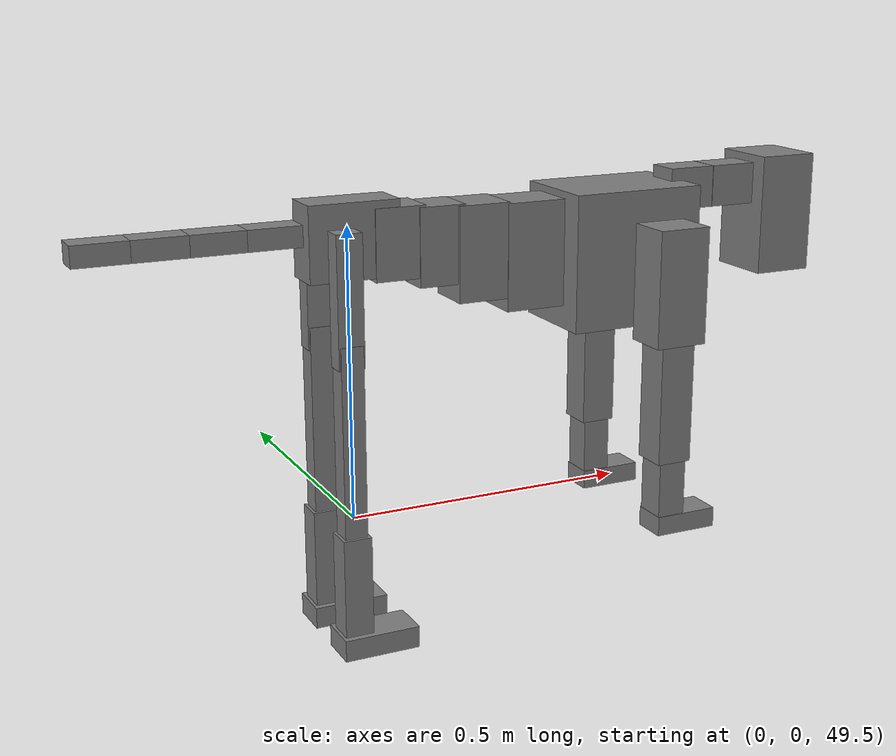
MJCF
<mujoco model="dog">

    <default>
        <joint armature="0.02" stiffness="1" damping="0.2" limited="true"/>
        <geom condim="3" friction="1 0.05 0.05" margin="0.01"/>
        <motor ctrllimited="true" ctrlrange="-1.0 1.0" forcelimited="true" gear="50"/>
    </default>

    <compiler inertiafromgeom="true" angle="radian"/>

    <option timestep="0.016" iterations="50" tolerance="1e-10" solver="Newton" jacobian="dense" cone="pyramidal"/>

    <size nconmax="20000" njmax="60000" nstack="5000000"/>
    <visual>
        <map force="0.1" zfar="30"/>
        <rgba haze="0.15 0.25 0.35 1"/>
        <quality shadowsize="2048"/>
        <global offwidth="800" offheight="800"/>
    </visual>

    <asset>
        <texture type="skybox" builtin="gradient" rgb1="0.3 0.5 0.7" rgb2="0 0 0" width="512" height="512"/>
        <texture name="texplane" type="2d" builtin="checker" rgb1=".2 .3 .4" rgb2=".1 0.15 0.2" width="512" height="512"
                 mark="cross" markrgb=".8 .8 .8"/>
        <texture name="texgeom" type="cube" builtin="flat" mark="cross" width="127" height="1278" rgb1="0.8 0.6 0.4"
                 rgb2="0.8 0.6 0.4" markrgb="1 1 1" random="0.01"/>

        <material name="matplane" reflectance="0.3" texture="texplane" texrepeat="1 1" texuniform="true"/>
        <material name="matgeom" texture="texgeom" texuniform="true" rgba="0.8 0.6 .4 1"/>
    </asset>

    <worldbody>
        <geom name="floor" pos="0 0 0" size="0 0 .25" type="plane" material="matplane" condim="3"/>

        <light directional="false" diffuse=".2 .2 .2" specular="0 0 0" pos="0 0 5" dir="0 0 -1" castshadow="false"/>
        <light mode="targetbodycom" target="torso" directional="false" diffuse=".8 .8 .8" specular="0.3 0.3 0.3"
               pos="0 0 4.0" dir="0 0 -1"/>

        <body name="root" pos="0 0 50">
            <freejoint name="root_1"/>
            <geom type="box" pos="0 0 -0.02" size="0.0774  0.0358  0.063" density="2030"/>

            <body name="spine1" pos="0.054 0 0">
                <joint name="spine1_y" axis="0 1 0" range="0 0.7" limited="true"/>
                <geom type="box" pos="0.02375 0 -0.03" size="0.04375  0.0375  0.05985" density="2030"/>

                <body name="spine2" pos="0.0612 0 0">
                    <joint name="spine2_y" axis="0 1 0" range="-0.15 0.15" limited="true"/>
                    <geom type="box" pos="0.03555  0  -0.04" size="0.04055  0.039  0.06615" density="2030"/>

                    <body name="spine3" pos="0.0730 0 0">
                        <joint name="spine3_y" axis="0 1 0" range="-0.15 0.15" limited="true"/>
                        <geom type="box" pos="0.03555  0  -0.057" size="0.04555  0.0445  0.081" density="2030"/>

                        <body name="spine4" pos="0.0780 0 0">
                            <joint name="spine4_y" axis="0 1 0" range="-0.15 0.15" limited="true"/>
                            <geom type="box" pos="0.05265  0  -0.07" size="0.05265  0.045  0.09135" density="2030"/>

                            <body name="torso" pos="0.1082 0 0">
                                <joint name="torso_y" axis="0 1 0" range="-0.15 0.15" limited="true"/>
                                <geom type="box" pos="0.11925  0  -0.085" size="0.11925  0.085  0.11745"
                                      density="2030"/>

                                <body name="neck1" pos="0.2160  0   0.0180">
                                    <joint name="neck1_y" axis="0 1 0" range="-1.2  -1" limited="true"/>
                                    <geom type="box" pos="0.0423  0  0" size="0.0423  0.03  0.036" density="2325"/>

                                    <body name="neck2" pos="0.0853  0  0">
                                        <joint name="neck2_y" axis="0 1 0" range="0.1  0" limited="true"/>
                                        <geom type="box" pos="0.0423  0  0" size="0.0423  0.03  0.036" density="2325"/>

                                        <body name="head" pos="0.0853  0  0">
                                            <joint name="head_y" axis="0 1 0" range="-0.3  -0.2" limited="true"/>
                                            <geom type="box" pos="0.0531  0  -0.055" size="0.0531  0.06  0.1044"
                                                  density="4030"/>

                                        </body>
                                    </body>
                                </body>

                                <body name="front_shoulder" pos="0.156  0   -0.0480">
                                    <joint name="front_shoulder_y" axis="0 1 0" range="-1 1.5" limited="true"/>
                                    <geom type="box" pos="0 0.13 -0.0738" size="0.0466  0.0398  0.1005" density="1158"/>
                                    <geom type="box" pos="0 -0.13 -0.0738" size="0.0466  0.0398  0.1005"
                                          density="1158"/>

                                    <body name="front_elbow" pos="0  0  -0.1476">
                                        <joint name="front_elbow_y" axis="0 1 0" range="-2 0" limited="true"/>
                                        <geom type="box" pos="0 0.13 -0.1183" size="0.0313  0.0320  0.1183"
                                              density="1081"/>
                                        <geom type="box" pos="0 -0.13 -0.1183" size="0.0313  0.0320  0.1183"
                                              density="1081"/>

                                        <body name="front_wrist" pos="0  0  -0.2366">
                                            <joint name="front_wrist_y" axis="0 1 0" range="-0.2 0" limited="true"/>
                                            <geom type="box" pos="0 0.13 -0.0562" size="0.0253  0.0281  0.0693"
                                                  density="1664"/>
                                            <geom type="box" pos="0 -0.13 -0.0562" size="0.0253  0.0281  0.0693"
                                                  density="1664"/>

                                            <body name="front_finger_end" pos="0  0  -0.1124">
                                                <joint name="front_finger_y" axis="0 1 0" range="-0.4 1"
                                                       limited="true"/>
                                                <geom type="box" pos="0.0309  0.13  -0.0022"
                                                      size="0.0567  0.0309  0.0172" density="1515"/>
                                                <geom type="box" pos="0.0309  -0.13  -0.0022"
                                                      size="0.0567  0.0309  0.0172" density="1515"/>

                                            </body>

                                        </body>
                                    </body>
                                </body>

                            </body>
                        </body>
                    </body>
                </body>
            </body>

            <body name="back_hip" pos="-0.03 0 -0.018">
                <joint name="back_hip_y" axis="0 1 0" range="-1.5 0.3" limited="true"/>
                <geom type="box" pos="0 0.07 -0.0864" size="0.0220  0.0173  0.1092" density="1154"/>
                <geom type="box" pos="0 -0.07 -0.0864" size="0.0220  0.0173  0.1092" density="1154"/>

                <body name="back_knee" pos="0  0  -0.1729">
                    <joint name="back_knee_y" axis="0 1 0" range="0 2.8" limited="true"/>
                    <geom type="box" pos="0 0.07 -0.1596" size="0.0195  0.0192  0.1751" density="1227"/>
                    <geom type="box" pos="0 -0.07 -0.1596" size="0.0195  0.0192  0.1751" density="1227"/>

                    <body name="back_ankle" pos="0  0  -0.3192">
                        <joint name="back_ankle_y" axis="0 1 0" range="-2.2 0" limited="true"/>
                        <geom type="box" pos="0 0.07 -0.0872" size="0.0246  0.0246  0.0985" density="1284"/>
                        <geom type="box" pos="0 -0.07 -0.0872" size="0.0246  0.0246  0.0985" density="1284"/>

                        <body name="back_toe_end" pos="0  0  -0.1744">
                            <joint name="back_toe_y" axis="0 1 0" range="-0.4 1" limited="true"/>
                            <geom type="box" pos="0.0360  0.07  -0.0037" size="0.0660  0.0360  0.0187" density="1515"/>
                            <geom type="box" pos="0.0360  -0.07  -0.0037" size="0.0660  0.0360  0.0187" density="1515"/>

                        </body>
                    </body>
                </body>
            </body>

            <body name="tail1" pos="-0.074 0 -0.006">
                <joint name="tail1_y" axis="0 1 0" range="-0.2 0.2" limited="true"/>
                <geom type="box" pos="-0.0536  0  0" size="0.045  0.025  0.0175" density="1587"/>

                <body name="tail2" pos="-0.09 0 0">
                    <joint name="tail2_y" axis="0 1 0" range="-0.2 0.2" limited="true"/>
                    <geom type="box" pos="-0.0536  0  0" size="0.045  0.025  0.0175" density="1587"/>

                    <body name="tail3" pos="-0.09 0 0">
                        <joint name="tail3_y" axis="0 1 0" range="-0.2 0.2" limited="true"/>
                        <geom type="box" pos="-0.0536  0  0" size="0.045  0.025  0.0175" density="1587"/>

                        <body name="tail4" pos="-0.09 0 0">
                            <joint name="tail4_y" axis="0 1 0" range="-0.2 0.2" limited="true"/>
                            <geom type="box" pos="-0.0536  0  0" size="0.045  0.025  0.0175" density="1587"/>

                        </body>
                    </body>
                </body>
            </body>
        </body>
    </worldbody>

    <actuator>
        <motor joint="spine1_y" forcerange="-150 150     "/>
        <motor joint="spine2_y" forcerange="-150 150     "/>
        <motor joint="spine3_y" forcerange="-150 150     "/>
        <motor joint="spine4_y" forcerange="-150 150     "/>
        <motor joint="torso_y" forcerange="-150 150     "/>
        <motor joint="neck1_y" forcerange="-100 100       "/>
        <motor joint="neck2_y" forcerange="-100 100       "/>
        <motor joint="head_y" forcerange="-150 150       "/>
        <motor joint="front_shoulder_y" forcerange="-172.32 192.97"/>
        <motor joint="front_elbow_y" forcerange="-194.01 138.86"/>
        <motor joint="front_wrist_y" forcerange="-91.46 133.54"/>
        <motor joint="front_finger_y" forcerange="-78.20 46.66"/>
        <motor joint="back_hip_y" forcerange="-214.78 215.50"/>
        <motor joint="back_knee_y" forcerange="-255.33 224.36"/>
        <motor joint="back_angle_y" forcerange="-68.29 225.94"/>
        <motor joint="back_toe_y" forcerange="-88.50 119.46"/>
        <motor joint="tail1_y" forcerange="-50 50     "/>
        <motor joint="tail2_y" forcerange="-50 50     "/>
        <motor joint="tail3_y" forcerange="-50 50     "/>
        <motor joint="tail4_y" forcerange="-50 50     "/>
    </actuator>
</mujoco>
